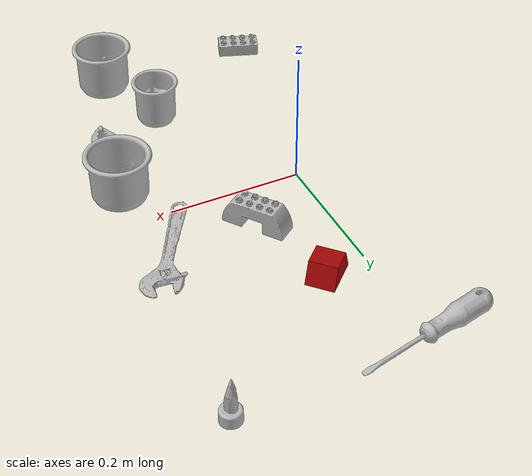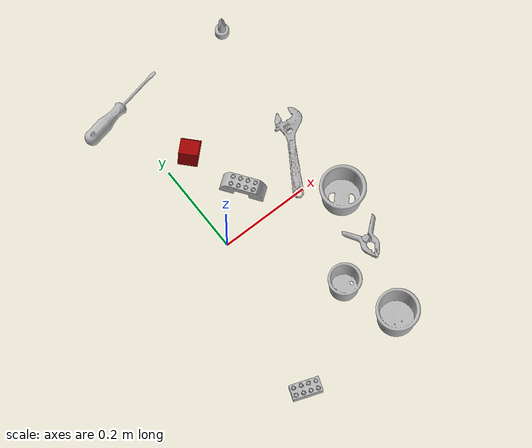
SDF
<sdf version="1.4">
  <world name="default">
    <light name="light1" type="point">
      <pose>0 0 1 0 0 0</pose>
      <diffuse>3 3 3 1</diffuse>
      <specular>3 3 3 1</specular>
    </light>
    <light name="light2" type="point">
      <pose>0 0.5 2 0 0 0</pose>
      <diffuse>1 1 1 1</diffuse>
      <specular>1 1 1 1</specular>
    </light>
    <light name="light3" type="point">
      <pose>0 0.5 2 0 0 0</pose>
      <diffuse>3 3 3 1</diffuse>
      <specular>3 3 3 1</specular>
    </light>
    <scene>
      <ambient>0.7 0.7 0.7</ambient>
    </scene>
    <model name="cup1">
      <link name="link_cup1">
        <collision name="default">
          <geometry>
            <mesh>
              <uri>model://d_cups/collision_meshes/collision.obj</uri>
              <scale>1.0 1.0 1.0</scale>
            </mesh>
          </geometry>
          <surface>
            <friction>
              <ode>
                <mu>0.5</mu>
                <mu2>0.5</mu2>
              </ode>
            </friction>
          <contact>
        <ode>
            <max_vel>0</max_vel>
            <min_depth>0.0001</min_depth>
            <kp>1e8</kp>
        </ode>
    </contact></surface>
        </collision>
        <visual name="default">
          <geometry>
            <mesh>
              <uri>model://d_cups/visual_meshes/visual.dae</uri>
              <scale>1.0 1.0 1.0</scale>
            </mesh>
          </geometry>
        </visual>
        <inertial>
          <mass>0.06783133745193481</mass>
          <pose>0.0008068059105426073 0.0019117397023364902 -0.002266651252284646 0.24012426461604838 -0.24709695541432683 0.5942481546461544</pose>
          <inertia>
            <ixx>5.679078e-05</ixx>
            <iyy>5.662642e-05</iyy>
            <izz>5.1405317e-05</izz>
            <ixy>0</ixy>
            <ixz>0</ixz>
            <iyz>0</iyz>
          </inertia>
        </inertial>
      </link>
      <pose>0.13112573325634003 -0.2219948172569275 0.03465898334980011 6.759651083739454e-07 2.9668840977511465e-07 2.3951688010620757</pose>
    </model>
    <model name="cup2">
      <link name="link_cup2">
        <collision name="default">
          <geometry>
            <mesh>
              <uri>model://h_cups/collision_meshes/collision.obj</uri>
              <scale>1.0 1.0 1.0</scale>
            </mesh>
          </geometry>
          <surface>
            <friction>
              <ode>
                <mu>0.5</mu>
                <mu2>0.5</mu2>
              </ode>
            </friction>
          <contact>
        <ode>
            <max_vel>0</max_vel>
            <min_depth>0.0001</min_depth>
            <kp>1e8</kp>
        </ode>
    </contact></surface>
        </collision>
        <visual name="default">
          <geometry>
            <mesh>
              <uri>model://h_cups/visual_meshes/visual.dae</uri>
              <scale>1.0 1.0 1.0</scale>
            </mesh>
          </geometry>
        </visual>
        <inertial>
          <mass>0.0420527309179306</mass>
          <pose>-2.702834171941504e-05 0.0002301869390066713 -0.0018405404407531023 -0.02436231807299455 0.06545237013505961 0.1288477560592675</pose>
          <inertia>
            <ixx>5.430915e-05</ixx>
            <iyy>5.3661057e-05</iyy>
            <izz>5.69554e-05</izz>
            <ixy>0</ixy>
            <ixz>0</ixz>
            <iyz>0</iyz>
          </inertia>
        </inertial>
      </link>
      <pose>0.17397436499595642 -0.3393478989601135 0.037758003920316696 -1.4250807198978358e-05 -1.6095004182549483e-05 1.2351496514660487</pose>
    </model>
    <model name="cup3">
      <link name="link_cup3">
        <collision name="default">
          <geometry>
            <mesh>
              <uri>model://i_cups/collision_meshes/collision.obj</uri>
              <scale>1.0 1.0 1.0</scale>
            </mesh>
          </geometry>
          <surface>
            <friction>
              <ode>
                <mu>0.5</mu>
                <mu2>0.5</mu2>
              </ode>
            </friction>
          <contact>
        <ode>
            <max_vel>0</max_vel>
            <min_depth>0.0001</min_depth>
            <kp>1e8</kp>
        </ode>
    </contact></surface>
        </collision>
        <visual name="default">
          <geometry>
            <mesh>
              <uri>model://i_cups/visual_meshes/visual.dae</uri>
              <scale>1.0 1.0 1.0</scale>
            </mesh>
          </geometry>
        </visual>
        <inertial>
          <mass>0.1172947883605957</mass>
          <pose>0.00011240218736929819 0.00016797319403849542 -0.0008579035638831556 -0.028982974239284674 -0.039873277979934216 -0.3459139003356122</pose>
          <inertia>
            <ixx>0.00016239638</ixx>
            <iyy>0.00016382721</iyy>
            <izz>0.00018150422</izz>
            <ixy>0</ixy>
            <ixz>0</ixz>
            <iyz>0</iyz>
          </inertia>
        </inertial>
      </link>
      <pose>0.2504880130290985 -0.06662284582853317 0.03777472674846649 0.0018883268015071242 -0.006397050279715587 2.1100011267470355</pose>
    </model>
    <model name="toy1">
      <link name="link_toy1">
        <collision name="default">
          <geometry>
            <mesh>
              <uri>model://prism/collision_meshes/collision.obj</uri>
              <scale>0.5 0.5 0.5</scale>
            </mesh>
          </geometry>
          <surface>
            <friction>
              <ode>
                <mu>0.5</mu>
                <mu2>0.5</mu2>
              </ode>
            </friction>
          <contact>
        <ode>
            <max_vel>0</max_vel>
            <min_depth>0.0001</min_depth>
            <kp>1e8</kp>
        </ode>
    </contact></surface>
        </collision>
        <visual name="default">
          <geometry>
            <mesh>
              <uri>model://prism/visual_meshes/visual.dae</uri>
              <scale>0.5 0.5 0.5</scale>
            </mesh>
          </geometry>
        </visual>
        <inertial>
          <mass>0.04854338616132736</mass>
          <pose>-4.92679828312248e-05 -2.480786349678965e-07 -0.0016934549203142524 0.0 0.006559181697473799 0.0</pose>
          <inertia>
            <ixx>1.0952453e-05</ixx>
            <iyy>1.3236178e-05</iyy>
            <izz>1.6212734e-05</izz>
            <ixy>0</ixy>
            <ixz>0</ixz>
            <iyz>0</iyz>
          </inertia>
        </inertial>
      </link>
      <pose>0.06231033056974411 0.21005919575691223 0.016085004433989525 2.3717017121682095e-08 -8.248672026052618e-08 -2.388493758477482</pose>
    </model>
    <model name="toy2">
      <link name="link_toy2">
        <collision name="default">
          <geometry>
            <mesh>
              <uri>model://e_toy_airplane/collision_meshes/collision.obj</uri>
              <scale>1.0 1.0 1.0</scale>
            </mesh>
          </geometry>
          <surface>
            <friction>
              <ode>
                <mu>0.5</mu>
                <mu2>0.5</mu2>
              </ode>
            </friction>
          <contact>
        <ode>
            <max_vel>0</max_vel>
            <min_depth>0.0001</min_depth>
            <kp>1e8</kp>
        </ode>
    </contact></surface>
        </collision>
        <visual name="default">
          <geometry>
            <mesh>
              <uri>model://e_toy_airplane/visual_meshes/visual.dae</uri>
              <scale>1.0 1.0 1.0</scale>
            </mesh>
          </geometry>
        </visual>
        <inertial>
          <mass>0.014407381415367126</mass>
          <pose>0.00011740459740394726 -2.2482932763523422e-05 -0.011187206022441387 0.005518488041491648 0.009228285270614433 0.15041380385765837</pose>
          <inertia>
            <ixx>4.397297e-06</ixx>
            <iyy>4.352315e-06</iyy>
            <izz>1.3215607e-06</izz>
            <ixy>0</ixy>
            <ixz>0</ixz>
            <iyz>0</iyz>
          </inertia>
        </inertial>
      </link>
      <pose>0.2836917042732239 0.38431307673454285 0.033211950212717056 6.789828581351262e-05 -0.00013981810852461857 2.4397858849464176</pose>
    </model>
    <model name="toy3">
      <link name="link_toy3">
        <collision name="default">
          <geometry>
            <mesh>
              <uri>model://e_lego_duplo/collision_meshes/collision.obj</uri>
              <scale>1.0 1.0 1.0</scale>
            </mesh>
          </geometry>
          <surface>
            <friction>
              <ode>
                <mu>0.5</mu>
                <mu2>0.5</mu2>
              </ode>
            </friction>
          <contact>
        <ode>
            <max_vel>0</max_vel>
            <min_depth>0.0001</min_depth>
            <kp>1e8</kp>
        </ode>
    </contact></surface>
        </collision>
        <visual name="default">
          <geometry>
            <mesh>
              <uri>model://e_lego_duplo/visual_meshes/visual.dae</uri>
              <scale>1.0 1.0 1.0</scale>
            </mesh>
          </geometry>
        </visual>
        <inertial>
          <mass>0.059077512472867966</mass>
          <pose>0.00032560460385866463 0.0002348544221604243 0.0019521447829902172 -0.0225678114641467 -6.824730634042773e-05 -0.007625154901652298</pose>
          <inertia>
            <ixx>1.2319611e-05</ixx>
            <iyy>5.0562856e-05</iyy>
            <izz>4.923807e-05</izz>
            <ixy>0</ixy>
            <ixz>0</ixz>
            <iyz>0</iyz>
          </inertia>
        </inertial>
      </link>
      <pose>0.10087940096855164 0.07657986879348755 0.021809015423059464 3.504999303402831e-06 -8.597975091361116e-07 2.1978048509971697</pose>
    </model>
    <model name="toy4">
      <link name="link_toy4">
        <collision name="default">
          <geometry>
            <mesh>
              <uri>model://c_lego_duplo/collision_meshes/collision.obj</uri>
              <scale>1.0 1.0 1.0</scale>
            </mesh>
          </geometry>
          <surface>
            <friction>
              <ode>
                <mu>0.5</mu>
                <mu2>0.5</mu2>
              </ode>
            </friction>
          <contact>
        <ode>
            <max_vel>0</max_vel>
            <min_depth>0.0001</min_depth>
            <kp>1e8</kp>
        </ode>
    </contact></surface>
        </collision>
        <visual name="default">
          <geometry>
            <mesh>
              <uri>model://c_lego_duplo/visual_meshes/visual.dae</uri>
              <scale>1.0 1.0 1.0</scale>
            </mesh>
          </geometry>
        </visual>
        <inertial>
          <mass>0.019630447030067444</mass>
          <pose>0.000316459103487432 0.00019464583601802588 0.0010453149443492293 -0.011520787241280632 0.0059000791517924015 0.031100331826339908</pose>
          <inertia>
            <ixx>7.554163e-06</ixx>
            <iyy>2.4130718e-06</iyy>
            <izz>8.827816e-06</izz>
            <ixy>0</ixy>
            <ixz>0</ixz>
            <iyz>0</iyz>
          </inertia>
        </inertial>
      </link>
      <pose>-0.0643211379647255 -0.3420514166355133 0.0119814807549119 0.008019280055086944 -0.002091686953503422 -1.9349204776367768</pose>
    </model>
    <model name="hardware1">
      <link name="link_hardware1">
        <collision name="default">
          <geometry>
            <mesh>
              <uri>model://flat_screwdriver/collision_meshes/collision.obj</uri>
              <scale>1.0 1.0 1.0</scale>
            </mesh>
          </geometry>
          <surface>
            <friction>
              <ode>
                <mu>0.5</mu>
                <mu2>0.5</mu2>
              </ode>
            </friction>
          <contact>
        <ode>
            <max_vel>0</max_vel>
            <min_depth>0.0001</min_depth>
            <kp>1e8</kp>
        </ode>
    </contact></surface>
        </collision>
        <visual name="default">
          <geometry>
            <mesh>
              <uri>model://flat_screwdriver/visual_meshes/visual.dae</uri>
              <scale>1.0 1.0 1.0</scale>
            </mesh>
          </geometry>
        </visual>
        <inertial>
          <mass>0.05795019492506981</mass>
          <pose>-0.0489187128841877 -0.0006576800369657576 -0.0006140916375443339 -0.5616548332173045 -0.0032337243504420286 0.0069822829580931615</pose>
          <inertia>
            <ixx>6.846775e-06</ixx>
            <iyy>8.6921296e-05</iyy>
            <izz>8.688106e-05</izz>
            <ixy>0</ixy>
            <ixz>0</ixz>
            <iyz>0</iyz>
          </inertia>
        </inertial>
      </link>
      <pose>0.005280476063489914 0.37537580728530884 0.015338652767241001 -0.2144111302227462 0.040694494486660064 0.198378865223859</pose>
    </model>
    <model name="hardware2">
      <link name="link_hardware2">
        <collision name="default">
          <geometry>
            <mesh>
              <uri>model://medium_clamp/collision_meshes/collision.obj</uri>
              <scale>1.0 1.0 1.0</scale>
            </mesh>
          </geometry>
          <surface>
            <friction>
              <ode>
                <mu>0.5</mu>
                <mu2>0.5</mu2>
              </ode>
            </friction>
          <contact>
        <ode>
            <max_vel>0</max_vel>
            <min_depth>0.0001</min_depth>
            <kp>1e8</kp>
        </ode>
    </contact></surface>
        </collision>
        <visual name="default">
          <geometry>
            <mesh>
              <uri>model://medium_clamp/visual_meshes/visual.dae</uri>
              <scale>1.0 1.0 1.0</scale>
            </mesh>
          </geometry>
        </visual>
        <inertial>
          <mass>0.028340468183159828</mass>
          <pose>0.0053909942507743835 0.0003953247796744108 -0.0001222157443407923 -0.001226920261124021 0.0025845025680982987 0.03820769890719856</pose>
          <inertia>
            <ixx>7.720961e-06</ixx>
            <iyy>1.1236185e-05</iyy>
            <izz>1.7307093e-05</izz>
            <ixy>0</ixy>
            <ixz>0</ixz>
            <iyz>0</iyz>
          </inertia>
        </inertial>
      </link>
      <pose>0.23230095207691193 -0.16998842358589172 0.01353358943015337 0.07742882456281544 0.08545013585774522 -1.713729880415995</pose>
    </model>
    <model name="hardware3">
      <link name="link_hardware3">
        <collision name="default">
          <geometry>
            <mesh>
              <uri>model://adjustable_wrench/collision_meshes/collision.obj</uri>
              <scale>1.0 1.0 1.0</scale>
            </mesh>
          </geometry>
          <surface>
            <friction>
              <ode>
                <mu>0.5</mu>
                <mu2>0.5</mu2>
              </ode>
            </friction>
          <contact>
        <ode>
            <max_vel>0</max_vel>
            <min_depth>0.0001</min_depth>
            <kp>1e8</kp>
        </ode>
    </contact></surface>
        </collision>
        <visual name="default">
          <geometry>
            <mesh>
              <uri>model://adjustable_wrench/visual_meshes/visual.dae</uri>
              <scale>1.0 1.0 1.0</scale>
            </mesh>
          </geometry>
        </visual>
        <inertial>
          <mass>0.023935195058584213</mass>
          <pose>0.03740980476140976 -0.0028968877159059048 -0.001114922808483243 -0.014473210185193002 0.006656019736435525 -0.010954188403863873</pose>
          <inertia>
            <ixx>4.898683e-06</ixx>
            <iyy>5.733333e-05</iyy>
            <izz>6.197185e-05</izz>
            <ixy>0</ixy>
            <ixz>0</ixz>
            <iyz>0</iyz>
          </inertia>
        </inertial>
      </link>
      <pose>0.23199516534805298 0.07939571887254715 0.006125052459537983 0.046759056833022054 -0.029270407835696132 1.0170649667584775</pose>
    </model>
  <physics type="ode">
      <max_contacts>50</max_contacts>
      <ode>
        <solver>
          <type>quick</type>
          <iters>75</iters>
        </solver>
        <constraints>
          <contact_max_correcting_vel>0</contact_max_correcting_vel>
          <contact_surface_layer>0</contact_surface_layer>
        </constraints>
      </ode>
    </physics></world>
</sdf>
